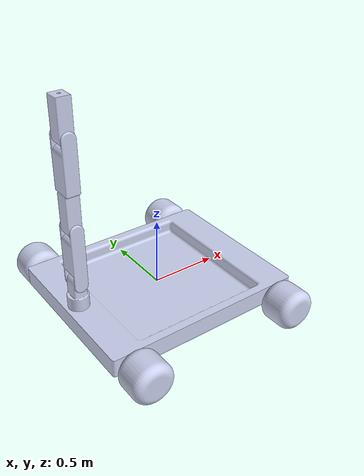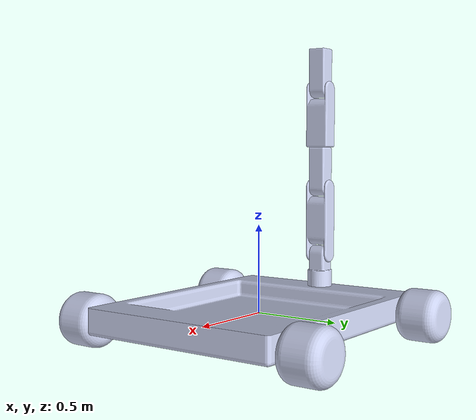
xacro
<?xml version="1.0"?>
<!-- Name your robot here -->
<robot name ="Car_1" xmlns:xacro="http://wiki.ros.org/xacro">

<!-- Include your urdf files here -->
	<!-- Include Robot's urdf filepath -->
	<xacro:include filename="$(find Car_1)/urdf/Car_1.urdf"/>

<!--  Gazebo plugin for control here is already added for you -->
	<gazebo>
		<plugin name="gazebo_ros_control" filename="libgazebo_ros_control.so">
			<robotNamespace>/Car_1</robotNamespace>
			<controlPeriod>0.001</controlPeriod>
			<legacyModeNS>false</legacyModeNS>
		</plugin>
	</gazebo>

<!-- Gazebo plugin for differential drive -->

	<gazebo>
		<plugin name="diff_drive_controller" filename="libgazebo_ros_diff_drive.so">
			<legacyMode>false</legacyMode>
			<alwaysOn>true</alwaysOn>
			<updateRate>1000.0</updateRate>
			<leftJoint>FRW_Chassis, RRW_Chassis</leftJoint>
			<rightJoint>FLW_Chassis, RLW_Chassis</rightJoint>
			<wheelSeparation>1.460</wheelSeparation>
			<wheelDiameter>0.3</wheelDiameter>
			<wheelTorque>10</wheelTorque>
			<publishTf>1</publishTf>
			<odometryFrame>odomf</odometryFrame>
			<commandTopic>cmd_vel</commandTopic>
			<odometryTopic>odom</odometryTopic>
			<robotBaseFrame>Chassis</robotBaseFrame>
			<wheelAcceleration>2.8</wheelAcceleration>
			<publishWheelJointState>true</publishWheelJointState>
			<publishWheelTF>false</publishWheelTF>
			<odometrySource>world</odometrySource>
			<rosDebugLevel>Debug</rosDebugLevel>
		</plugin>
	</gazebo>

<!-- Gazebo plugin for joint state publisher -->

	<gazebo>
		<plugin name="joint_state_publisher" filename="libgazebo_ros_joint_state_publisher.so">
		<jointName>AB_Chassis, Bicep_AB, BW_Bicep, Elbow_BW, TW_Elbow</jointName>
		</plugin>
	</gazebo>

<!-- Friction properties for wheels -->

</robot>

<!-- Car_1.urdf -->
<robot
  name="Car_1">
  <link name="Dummy"/>
  <link
    name="Chassis">
    <inertial>
      <origin
        xyz="9.85359198453595E-05 -0.016463414418635 -1.61805565512309E-16"
        rpy="0 0 0" />
      <mass
        value="161.904412309527" />
      <inertia
        ixx="22.6226623674723"
        ixy="-0.00106031744847904"
        ixz="1.94916551280363E-15"
        iyy="63.2906242505968"
        iyz="1.17745429693053E-15"
        izz="41.2716349546351" />
    </inertial>
    <visual>
      <origin
        xyz="0 0 0"
        rpy="0 0 0" />
      <geometry>
        <mesh
          filename="package://Car_1/meshes/Chassis.STL" />
      </geometry>
      <material
        name="">
        <color
          rgba="0.792156862745098 0.819607843137255 0.933333333333333 1" />
      </material>
    </visual>
    <collision>
      <origin
        xyz="0 0 0"
        rpy="0 0 0" />
      <geometry>
        <mesh
          filename="package://Car_1/meshes/Chassis.STL" />
      </geometry>
    </collision>
  </link>
  <joint
    name="Dummy_Chassis_Joint"
    type="fixed">
    <parent
      link="Dummy" />
    <child
      link="Chassis" />
  </joint>
  <link
    name="FL_Wheel">
    <inertial>
      <origin
        xyz="0 0 0.378081044321113"
        rpy="0 0 0" />
      <mass
        value="16.4704899135177" />
      <inertia
        ixx="0.170899521278999"
        ixy="0"
        ixz="-3.38657707334201E-18"
        iyy="0.170899521278999"
        iyz="-5.98392577789642E-19"
        izz="0.173579729077305" />
    </inertial>
    <visual>
      <origin
        xyz="0 0 0"
        rpy="0 0 0" />
      <geometry>
        <mesh
          filename="package://Car_1/meshes/FL_Wheel.STL" />
      </geometry>
      <material
        name="">
        <color
          rgba="0.792156862745098 0.819607843137255 0.933333333333333 1" />
      </material>
    </visual>
    <collision>
      <origin
        xyz="0 0 0"
        rpy="0 0 0" />
      <geometry>
        <mesh
          filename="package://Car_1/meshes/FL_Wheel.STL" />
      </geometry>
    </collision>
  </link>
  <joint
    name="FLW_Chassis"
    type="revolute">
    <origin
      xyz="-0.6 0.35 -0.025"
      rpy="1.5708 0.39309 -3.1416" />
    <parent
      link="Chassis" />
    <child
      link="FL_Wheel" />
    <axis
      xyz="0 0 1" />
    <limit
      lower="-1000000"
      upper="1000000"
      effort="100"
      velocity="1000" />
  </joint>
  <transmission name="FL_Wheel_Trans">
    <type>transmission_interface/SimpleTransmission</type>
    <joint name="FLW_Chassis">
      <hardwareInterface>hardware_interface/VelocityJointInterface</hardwareInterface>
    </joint>
    <actuator name="FLW_Motor">
      <hardwareInterface>hardware_interface/VelocityJointInterface</hardwareInterface>
      <mechanicalReduction>1</mechanicalReduction>
    </actuator>
  </transmission>
  <link
    name="FR_Wheel">
    <inertial>
      <origin
        xyz="0 -3.46944695195361E-18 0.378081044321113"
        rpy="0 0 0" />
      <mass
        value="16.4704899135177" />
      <inertia
        ixx="0.170899521278999"
        ixy="-1.17094433004118E-34"
        ixz="-3.84287660115048E-18"
        iyy="0.170899521278999"
        iyz="-1.03780467368306E-34"
        izz="0.173579729077305" />
    </inertial>
    <visual>
      <origin
        xyz="0 0 0"
        rpy="0 0 0" />
      <geometry>
        <mesh
          filename="package://Car_1/meshes/FR_Wheel.STL" />
      </geometry>
      <material
        name="">
        <color
          rgba="0.792156862745098 0.819607843137255 0.933333333333333 1" />
      </material>
    </visual>
    <collision>
      <origin
        xyz="0 0 0"
        rpy="0 0 0" />
      <geometry>
        <mesh
          filename="package://Car_1/meshes/FR_Wheel.STL" />
      </geometry>
    </collision>
  </link>
  <joint
    name="FRW_Chassis"
    type="revolute">
    <origin
      xyz="-0.6 -0.35 -0.025"
      rpy="1.5708 0 0" />
    <parent
      link="Chassis" />
    <child
      link="FR_Wheel" />
    <axis
      xyz="0 0 1" />
    <limit
      lower="-1000000"
      upper="1000000"
      effort="100"
      velocity="1000" />
  </joint>
  <transmission name="FR_Wheel_Trans">
    <type>transmission_interface/SimpleTransmission</type>
    <joint name="FRW_Chassis">
      <hardwareInterface>hardware_interface/VelocityJointInterface</hardwareInterface>
    </joint>
    <actuator name="FRW_Motor">
      <hardwareInterface>hardware_interface/VelocityJointInterface</hardwareInterface>
      <mechanicalReduction>1</mechanicalReduction>
    </actuator>
  </transmission>
  <link
    name="RL_Wheel">
    <inertial>
      <origin
        xyz="0 0 0.378081044321113"
        rpy="0 0 0" />
      <mass
        value="16.4704899135177" />
      <inertia
        ixx="0.170899521278999"
        ixy="0"
        ixz="-3.38657707334201E-18"
        iyy="0.170899521278999"
        iyz="-5.98392577789642E-19"
        izz="0.173579729077305" />
    </inertial>
    <visual>
      <origin
        xyz="0 0 0"
        rpy="0 0 0" />
      <geometry>
        <mesh
          filename="package://Car_1/meshes/RL_Wheel.STL" />
      </geometry>
      <material
        name="">
        <color
          rgba="0.792156862745098 0.819607843137255 0.933333333333333 1" />
      </material>
    </visual>
    <collision>
      <origin
        xyz="0 0 0"
        rpy="0 0 0" />
      <geometry>
        <mesh
          filename="package://Car_1/meshes/RL_Wheel.STL" />
      </geometry>
    </collision>
  </link>
  <joint
    name="RLW_Chassis"
    type="revolute">
    <origin
      xyz="0.6 0.35 -0.025"
      rpy="1.5708 0.39309 -3.1416" />
    <parent
      link="Chassis" />
    <child
      link="RL_Wheel" />
    <axis
      xyz="0 0 1" />
    <limit
      lower="-1000000"
      upper="1000000"
      effort="100"
      velocity="1000" />
  </joint>
  <transmission name="RL_Wheel_Trans">
    <type>transmission_interface/SimpleTransmission</type>
    <joint name="RLW_Chassis">
      <hardwareInterface>hardware_interface/VelocityJointInterface</hardwareInterface>
    </joint>
    <actuator name="RLW_Motor">
      <hardwareInterface>hardware_interface/VelocityJointInterface</hardwareInterface>
      <mechanicalReduction>1</mechanicalReduction>
    </actuator>
  </transmission>
  <link
    name="RR_Wheel">
    <inertial>
      <origin
        xyz="0 -3.46944695195361E-18 0.378081044321113"
        rpy="0 0 0" />
      <mass
        value="16.4704899135177" />
      <inertia
        ixx="0.170899521278999"
        ixy="-1.17094433004118E-34"
        ixz="-3.84287660115048E-18"
        iyy="0.170899521278999"
        iyz="-1.03780467368306E-34"
        izz="0.173579729077305" />
    </inertial>
    <visual>
      <origin
        xyz="0 0 0"
        rpy="0 0 0" />
      <geometry>
        <mesh
          filename="package://Car_1/meshes/RR_Wheel.STL" />
      </geometry>
      <material
        name="">
        <color
          rgba="0.792156862745098 0.819607843137255 0.933333333333333 1" />
      </material>
    </visual>
    <collision>
      <origin
        xyz="0 0 0"
        rpy="0 0 0" />
      <geometry>
        <mesh
          filename="package://Car_1/meshes/RR_Wheel.STL" />
      </geometry>
    </collision>
  </link>
  <joint
    name="RRW_Chassis"
    type="revolute">
    <origin
      xyz="0.6 -0.35 -0.025"
      rpy="1.5708 0 0" />
    <parent
      link="Chassis" />
    <child
      link="RR_Wheel" />
    <axis
      xyz="0 0 1" />
    <limit
      lower="-1000000"
      upper="1000000"
      effort="100"
      velocity="1000" />
  </joint>
  <transmission name="RR_Wheel_Trans">
    <type>transmission_interface/SimpleTransmission</type>
    <joint name="RRW_Chassis">
      <hardwareInterface>hardware_interface/VelocityJointInterface</hardwareInterface>
    </joint>
    <actuator name="RRW_Motor">
      <hardwareInterface>hardware_interface/VelocityJointInterface</hardwareInterface>
      <mechanicalReduction>1</mechanicalReduction>
    </actuator>
  </transmission>
  <link
    name="Arm_Base">
    <inertial>
      <origin
        xyz="0 0.152976096204713 1.50309365625096E-18"
        rpy="0 0 0" />
      <mass
        value="3.25348441268186" />
      <inertia
        ixx="0.0195880123660322"
        ixy="2.51212011347482E-19"
        ixz="1.81752260093214E-17"
        iyy="0.0075081587745099"
        iyz="4.21274880646901E-19"
        izz="0.0192954745601843" />
    </inertial>
    <visual>
      <origin
        xyz="0 0 0"
        rpy="0 0 0" />
      <geometry>
        <mesh
          filename="package://Car_1/meshes/Arm_Base.STL" />
      </geometry>
      <material
        name="">
        <color
          rgba="0.792156862745098 0.819607843137255 0.933333333333333 1" />
      </material>
    </visual>
    <collision>
      <origin
        xyz="0 0 0"
        rpy="0 0 0" />
      <geometry>
        <mesh
          filename="package://Car_1/meshes/Arm_Base.STL" />
      </geometry>
    </collision>
  </link>
  <joint
    name="AB_Chassis"
    type="revolute">
    <origin
      xyz="-0.65 0 0.025"
      rpy="1.5708 0 0" />
    <parent
      link="Chassis" />
    <child
      link="Arm_Base" />
    <axis
      xyz="0 1 0" />
    <limit
      lower="-2.8973"
      upper="2.8973"
      effort="87"
      velocity="2.1750" />
  </joint>
  <transmission name="Arm_Base_Trans">
    <type>transmission_interface/SimpleTransmission</type>
    <joint name="AB_Chassis">
      <hardwareInterface>hardware_interface/PositionJointInterface</hardwareInterface>
    </joint>
    <actuator name="AB_Motor">
      <hardwareInterface>hardware_interface/PositionJointInterface</hardwareInterface>
      <mechanicalReduction>1</mechanicalReduction>
    </actuator>
  </transmission>
  <link
    name="Bicep">
    <inertial>
      <origin
        xyz="-1.11022302462516E-16 0.205 4.03161623391747E-08"
        rpy="0 0 0" />
      <mass
        value="5.01050096511363" />
      <inertia
        ixx="0.0709872630145202"
        ixy="-6.28898095202147E-08"
        ixz="3.96116733721931E-19"
        iyy="0.0149239034213916"
        iyz="-2.34671088771049E-18"
        izz="0.0636472439734091" />
    </inertial>
    <visual>
      <origin
        xyz="0 0 0"
        rpy="0 0 0" />
      <geometry>
        <mesh
          filename="package://Car_1/meshes/Bicep.STL" />
      </geometry>
      <material
        name="">
        <color
          rgba="0.792156862745098 0.819607843137255 0.933333333333333 1" />
      </material>
    </visual>
    <collision>
      <origin
        xyz="0 0 0"
        rpy="0 0 0" />
      <geometry>
        <mesh
          filename="package://Car_1/meshes/Bicep.STL" />
      </geometry>
    </collision>
  </link>
  <joint
    name="Bicep_AB"
    type="revolute">
    <origin
      xyz="0 0.25 0"
      rpy="0 0 0" />
    <parent
      link="Arm_Base" />
    <child
      link="Bicep" />
    <axis
      xyz="0 0 1" />
    <limit
      lower="-1.7628"
      upper="1.7628"
      effort="87"
      velocity="2.1750" />
  </joint>
  <transmission name="Bicep_Trans">
    <type>transmission_interface/SimpleTransmission</type>
    <joint name="Bicep_AB">
      <hardwareInterface>hardware_interface/PositionJointInterface</hardwareInterface>
    </joint>
    <actuator name="Bicep_Motor">
      <hardwareInterface>hardware_interface/PositionJointInterface</hardwareInterface>
      <mechanicalReduction>1</mechanicalReduction>
    </actuator>
  </transmission>
  <link
    name="Bottom_Wrist">
    <inertial>
      <origin
        xyz="-5.76005539931757E-08 0.104723859303367 6.29756783574483E-05"
        rpy="0 0 0" />
      <mass
        value="3.06244303749571" />
      <inertia
        ixx="0.0242070590575506"
        ixy="3.29905354266355E-08"
        ixz="-1.66452981213341E-09"
        iyy="0.00557103438969488"
        iyz="-5.93643774158451E-06"
        izz="0.0236179659392289" />
    </inertial>
    <visual>
      <origin
        xyz="0 0 0"
        rpy="0 0 0" />
      <geometry>
        <mesh
          filename="package://Car_1/meshes/Bottom_Wrist.STL" />
      </geometry>
      <material
        name="">
        <color
          rgba="0.792156862745098 0.819607843137255 0.933333333333333 1" />
      </material>
    </visual>
    <collision>
      <origin
        xyz="0 0 0"
        rpy="0 0 0" />
      <geometry>
        <mesh
          filename="package://Car_1/meshes/Bottom_Wrist.STL" />
      </geometry>
    </collision>
  </link>
  <joint
    name="BW_Bicep"
    type="revolute">
    <origin
      xyz="0 0.41 0"
      rpy="0 0 0" />
    <parent
      link="Bicep" />
    <child
      link="Bottom_Wrist" />
    <axis
      xyz="0 0 1" />
    <limit
      lower="-1.7628"
      upper="1.7628"
      effort="87"
      velocity="2.1750" />
  </joint>
  <transmission name="Bottom_Wrist_Trans">
    <type>transmission_interface/SimpleTransmission</type>
    <joint name="BW_Bicep">
      <hardwareInterface>hardware_interface/PositionJointInterface</hardwareInterface>
    </joint>
    <actuator name="BW_Motor">
      <hardwareInterface>hardware_interface/PositionJointInterface</hardwareInterface>
      <mechanicalReduction>1</mechanicalReduction>
    </actuator>
  </transmission>
  <link
    name="Elbow">
    <inertial>
      <origin
        xyz="1.0222248303382E-07 0.260839568533626 -6.72505269797146E-10"
        rpy="0 0 0" />
      <mass
        value="4.78140114383765" />
      <inertia
        ixx="0.0576162597068767"
        ixy="-3.90344857447567E-08"
        ixz="1.91474307365374E-09"
        iyy="0.0134139330355465"
        iyz="-9.38952159160228E-12"
        izz="0.0516557926060428" />
    </inertial>
    <visual>
      <origin
        xyz="0 0 0"
        rpy="0 0 0" />
      <geometry>
        <mesh
          filename="package://Car_1/meshes/Elbow.STL" />
      </geometry>
      <material
        name="">
        <color
          rgba="0.792156862745098 0.819607843137255 0.933333333333333 1" />
      </material>
    </visual>
    <collision>
      <origin
        xyz="0 0 0"
        rpy="0 0 0" />
      <geometry>
        <mesh
          filename="package://Car_1/meshes/Elbow.STL" />
      </geometry>
    </collision>
  </link>
  <joint
    name="Elbow_BW"
    type="revolute">
    <origin
      xyz="0 0.15 0"
      rpy="0 0 0" />
    <parent
      link="Bottom_Wrist" />
    <child
      link="Elbow" />
    <axis
      xyz="0 1 0" />
    <limit
      lower="-1.7628"
      upper="1.7628"
      effort="87"
      velocity="2.1750" />
  </joint>
  <transmission name="Elbow_Trans">
    <type>transmission_interface/SimpleTransmission</type>
    <joint name="Elbow_BW">
      <hardwareInterface>hardware_interface/PositionJointInterface</hardwareInterface>
    </joint>
    <actuator name="Elbow_Motor">
      <hardwareInterface>hardware_interface/PositionJointInterface</hardwareInterface>
      <mechanicalReduction>1</mechanicalReduction>
    </actuator>
  </transmission>
  <link
    name="Top_Wrist">
    <inertial>
      <origin
        xyz="-5.76005539931757E-08 0.104723859303367 6.29756783574647E-05"
        rpy="0 0 0" />
      <mass
        value="3.06244303749571" />
      <inertia
        ixx="0.0242070590575507"
        ixy="3.29905354340545E-08"
        ixz="-1.66452981111517E-09"
        iyy="0.00557103438969488"
        iyz="-5.9364377415831E-06"
        izz="0.023617965939229" />
    </inertial>
    <visual>
      <origin
        xyz="0 0 0"
        rpy="0 0 0" />
      <geometry>
        <mesh
          filename="package://Car_1/meshes/Top_Wrist.STL" />
      </geometry>
      <material
        name="">
        <color
          rgba="0.792156862745098 0.819607843137255 0.933333333333333 1" />
      </material>
    </visual>
    <collision>
      <origin
        xyz="0 0 0"
        rpy="0 0 0" />
      <geometry>
        <mesh
          filename="package://Car_1/meshes/Top_Wrist.STL" />
      </geometry>
    </collision>
  </link>
  <joint
    name="TW_Elbow"
    type="revolute">
    <origin
      xyz="0 0.455 0"
      rpy="0 0 0" />
    <parent
      link="Elbow" />
    <child
      link="Top_Wrist" />
    <axis
      xyz="0 0 1" />
    <limit
      lower="-1.7628"
      upper="1.7628"
      effort="87"
      velocity="2.1750" />
  </joint>
  <link name = "End_Effector" />
  <joint name="EE_TW" type="fixed">
    <parent link="Top_Wrist" />
    <child link="End_Effector" />
  </joint>
  <transmission name="Top_Wrist_Trans">
    <type>transmission_interface/SimpleTransmission</type>
    <joint name="TW_Elbow">
      <hardwareInterface>hardware_interface/PositionJointInterface</hardwareInterface>
    </joint>
    <actuator name="TW_Motor">
      <hardwareInterface>hardware_interface/PositionJointInterface</hardwareInterface>
      <mechanicalReduction>1</mechanicalReduction>
    </actuator>
  </transmission>
</robot>
